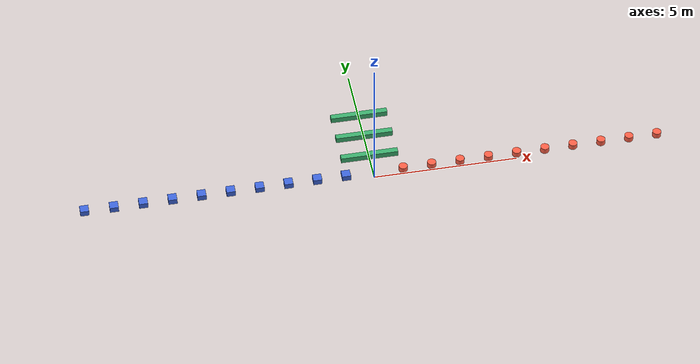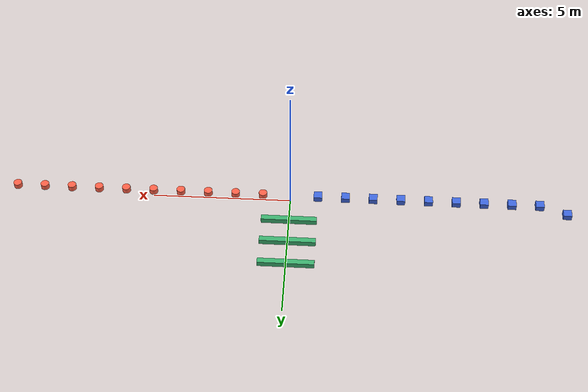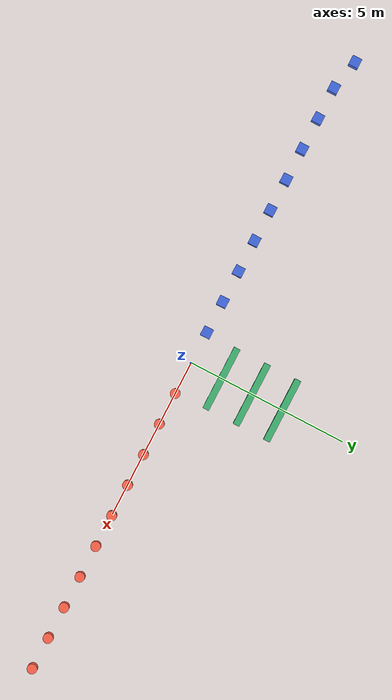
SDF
<sdf version="1.4">
 <world name="default">
  <physics type="ode">
   <max_step_size>0.001</max_step_size>
   <real_time_factor>1</real_time_factor>
   <real_time_update_rate>1000</real_time_update_rate>
   <gravity>0 0 -9.8</gravity>
  </physics>
  <spherical_coordinates>
   <surface_model>EARTH_WGS84</surface_model>
   <latitude_deg>0</latitude_deg>
   <longitude_deg>0</longitude_deg>
   <elevation>0</elevation>
   <heading_deg>0</heading_deg>
  </spherical_coordinates>
  <scene><sky><clouds><speed>12</speed></clouds></sky></scene>
  <include><uri>model://sun</uri></include>
  <model name="small_cylinder_1">
   <pose>1 0 0.2 0 0 0</pose>
   <include><uri>model://small_cylinder</uri></include>
   <plugin name="mbzirc_gazebo_treasure_plugin_cylinder_1" filename="libmbzirc_gazebo_treasure_plugin.so">
    <staticObject>true</staticObject>
   </plugin>
  </model>
  <model name="small_cylinder_2">
   <pose>2 0 0.2 0 0 0</pose>
   <include><uri>model://small_cylinder</uri></include>
   <plugin name="mbzirc_gazebo_treasure_plugin_cylinder_2" filename="libmbzirc_gazebo_treasure_plugin.so">
    <staticObject>true</staticObject>
   </plugin>
  </model>
  <model name="small_cylinder_3">
   <pose>3 0 0.2 0 0 0</pose>
   <include><uri>model://small_cylinder</uri></include>
   <plugin name="mbzirc_gazebo_treasure_plugin_cylinder_3" filename="libmbzirc_gazebo_treasure_plugin.so">
    <staticObject>true</staticObject>
   </plugin>
  </model>
  <model name="small_cylinder_4">
   <pose>4 0 0.2 0 0 0</pose>
   <include><uri>model://small_cylinder</uri></include>
   <plugin name="mbzirc_gazebo_treasure_plugin_cylinder_4" filename="libmbzirc_gazebo_treasure_plugin.so">
    <staticObject>true</staticObject>
   </plugin>
  </model>
  <model name="small_cylinder_5">
   <pose>5 0 0.2 0 0 0</pose>
   <include><uri>model://small_cylinder</uri></include>
   <plugin name="mbzirc_gazebo_treasure_plugin_cylinder_5" filename="libmbzirc_gazebo_treasure_plugin.so">
    <staticObject>true</staticObject>
   </plugin>
  </model>
  <model name="small_cylinder_6">
   <pose>6 0 0.2 0 0 0</pose>
   <include><uri>model://small_cylinder</uri></include>
   <plugin name="mbzirc_gazebo_treasure_plugin_cylinder_6" filename="libmbzirc_gazebo_treasure_plugin.so"/>
  </model>
  <model name="small_cylinder_7">
   <pose>7 0 0.2 0 0 0</pose>
   <include><uri>model://small_cylinder</uri></include>
   <plugin name="mbzirc_gazebo_treasure_plugin_cylinder_7" filename="libmbzirc_gazebo_treasure_plugin.so"/>
  </model>
  <model name="small_cylinder_8">
   <pose>8 0 0.2 0 0 0</pose>
   <include><uri>model://small_cylinder</uri></include>
   <plugin name="mbzirc_gazebo_treasure_plugin_cylinder_8" filename="libmbzirc_gazebo_treasure_plugin.so"/>
  </model>
  <model name="small_cylinder_9">
   <pose>9 0 0.2 0 0 0</pose>
   <include><uri>model://small_cylinder</uri></include>
   <plugin name="mbzirc_gazebo_treasure_plugin_cylinder_9" filename="libmbzirc_gazebo_treasure_plugin.so"/>
  </model>
  <model name="small_cylinder_10">
   <pose>10 0 0.2 0 0 0</pose>
   <include><uri>model://small_cylinder</uri></include>
   <plugin name="mbzirc_gazebo_treasure_plugin_cylinder_10" filename="libmbzirc_gazebo_treasure_plugin.so"/>
  </model>
  <model name="small_rectangle_1">
   <pose>-1 0 0.2 0 0 0</pose>
   <include><uri>model://small_rectangle</uri></include>
   <plugin name="mbzirc_gazebo_treasure_plugin_rectangle_1" filename="libmbzirc_gazebo_treasure_plugin.so">
    <staticObject>true</staticObject>
   </plugin>
  </model>
  <model name="small_rectangle_2">
   <pose>-2 0 0.2 0 0 0</pose>
   <include><uri>model://small_rectangle</uri></include>
   <plugin name="mbzirc_gazebo_treasure_plugin_rectangle_2" filename="libmbzirc_gazebo_treasure_plugin.so">
    <staticObject>true</staticObject>
   </plugin>
  </model>
  <model name="small_rectangle_3">
   <pose>-3 0 0.2 0 0 0</pose>
   <include><uri>model://small_rectangle</uri></include>
   <plugin name="mbzirc_gazebo_treasure_plugin_rectangle_3" filename="libmbzirc_gazebo_treasure_plugin.so">
    <staticObject>true</staticObject>
   </plugin>
  </model>
  <model name="small_rectangle_4">
   <pose>-4 0 0.2 0 0 0</pose>
   <include><uri>model://small_rectangle</uri></include>
   <plugin name="mbzirc_gazebo_treasure_plugin_rectangle_4" filename="libmbzirc_gazebo_treasure_plugin.so">
    <staticObject>true</staticObject>
   </plugin>
  </model>
  <model name="small_rectangle_5">
   <pose>-5 0 0.2 0 0 0</pose>
   <include><uri>model://small_rectangle</uri></include>
   <plugin name="mbzirc_gazebo_treasure_plugin_rectangle_5" filename="libmbzirc_gazebo_treasure_plugin.so">
    <staticObject>true</staticObject>
   </plugin>
  </model>
  <model name="small_rectangle_6">
   <pose>-6 0 0.2 0 0 0</pose>
   <include><uri>model://small_rectangle</uri></include>
   <plugin name="mbzirc_gazebo_treasure_plugin_rectangle_6" filename="libmbzirc_gazebo_treasure_plugin.so"/>
  </model>
  <model name="small_rectangle_7">
   <pose>-7 0 0.2 0 0 0</pose>
   <include><uri>model://small_rectangle</uri></include>
   <plugin name="mbzirc_gazebo_treasure_plugin_rectangle_7" filename="libmbzirc_gazebo_treasure_plugin.so"/>
  </model>
  <model name="small_rectangle_8">
   <pose>-8 0 0.2 0 0 0</pose>
   <include><uri>model://small_rectangle</uri></include>
   <plugin name="mbzirc_gazebo_treasure_plugin_rectangle_8" filename="libmbzirc_gazebo_treasure_plugin.so"/>
  </model>
  <model name="small_rectangle_9">
   <pose>-9 0 0.2 0 0 0</pose>
   <include><uri>model://small_rectangle</uri></include>
   <plugin name="mbzirc_gazebo_treasure_plugin_rectangle_9" filename="libmbzirc_gazebo_treasure_plugin.so"/>
  </model>
  <model name="small_rectangle_10">
   <pose>-10 0.2 0 0 0 0</pose>
   <include><uri>model://small_rectangle</uri></include>
   <plugin name="mbzirc_gazebo_treasure_plugin_rectangle_10" filename="libmbzirc_gazebo_treasure_plugin.so"/>
  </model>
  <model name="large_object_1">
   <pose>0 1 0 0 0 0</pose>
   <include><uri>model://large_object</uri></include>
   <plugin name="mbzirc_gazebo_treasure_plugin_large_1" filename="libmbzirc_gazebo_treasure_plugin.so">
    <staticObject>true</staticObject>
   </plugin>
  </model>
  <model name="large_object_2">
   <pose>0 2 0 0 0 0</pose>
   <include><uri>model://large_object</uri></include>
   <plugin name="mbzirc_gazebo_treasure_plugin_large_2" filename="libmbzirc_gazebo_treasure_plugin.so">
    <staticObject>true</staticObject>
   </plugin>
  </model>
  <model name="large_object_3">
   <pose>0 3 0 0 0 0</pose>
   <include><uri>model://large_object</uri></include>
   <plugin name="mbzirc_gazebo_treasure_plugin_large_3" filename="libmbzirc_gazebo_treasure_plugin.so">
    <staticObject>true</staticObject>
   </plugin>
  </model>
 </world>
</sdf>

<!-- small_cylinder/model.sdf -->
<sdf version='1.4'>
  <model name="small_cylinder">
    <link name="link" >
      <pose>0 0 0.1 0 0 0</pose>
      <inertial>
        <mass>0.5</mass>
        <inertia>
          <!-- http://answers.gazebosim.org/question/4372/the-inertia-matrix-explained/ -->
          <ixx>0.044612</ixx>    <!-- for a box: ixx = 0.083 * mass * (3*r*r + h*h) -->
          <ixy>0.0</ixy>         <!-- for a box: ixy = 0 -->
          <ixz>0.0</ixz>         <!-- for a box: ixz = 0 -->
          <iyy>0.044612</iyy>    <!-- for a box: iyy = 0.083 * mass * (3*r*r + h*h) -->
          <iyz>0.0</iyz>         <!-- for a box: iyz = 0 -->
          <izz>0.025937</izz>    <!-- for a box: izz = 0.083 * mass * (r*r + h*h) -->
        </inertia>
      </inertial>
      <collision name="collision">
        <geometry>
          <cylinder>
            <length>0.2</length>
            <radius>0.15</radius>
          </cylinder>
        </geometry>
      </collision>
      <visual name="visual">
        <geometry>
          <cylinder>
            <length>0.2</length>
            <radius>0.15</radius>
          </cylinder>
        </geometry>
        <material>
          <ambient>1.00 0.39 0.28 1</ambient> <!-- tomato -->
          <diffuse>1.00 0.38 0.28 1</diffuse>
          <specular>0.1 0.1 0.1 1</specular>
          <emissive>0 0 0 0</emissive>
        </material>
      </visual>
    </link>
  </model>
</sdf>

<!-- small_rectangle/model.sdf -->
<sdf version='1.4'>
  <model name="small_rectangle">
    <link name="link" >
      <pose>0 0 0.1 0 0 0</pose>
      <inertial>
        <mass>0.5</mass>
        <inertia>
          <!-- http://answers.gazebosim.org/question/4372/the-inertia-matrix-explained/ -->
          <ixx>0.005395</ixx>   <!-- for a box: ixx = 0.083 * mass * (y*y + z*z) -->
          <ixy>0.0</ixy>        <!-- for a box: ixy = 0 -->
          <ixz>0.0</ixz>        <!-- for a box: ixz = 0 -->
          <iyy>0.005395</iyy>   <!-- for a box: iyy = 0.083 * mass * (x*x + z*z) -->
          <iyz>0.0</iyz>        <!-- for a box: iyz = 0 -->
          <izz>0.007470</izz>   <!-- for a box: izz = 0.083 * mass * (x*x + y*y) -->
        </inertia>
      </inertial>
      <collision name="collision">
        <geometry>
          <box>
            <size>0.3 0.3 0.2</size>
          </box>
        </geometry>
      </collision>
      <visual name="visual">
        <geometry>
          <box>
            <size>0.3 0.3 0.2</size>
          </box>
        </geometry>
        <material>
          <ambient>0.25 0.41 0.88 1</ambient> <!-- Royal Blue -->
          <diffuse>0.25 0.41 0.88 1</diffuse>
          <specular>0.1 0.1 0.1 1</specular>
          <emissive>0 0 0 0</emissive>
        </material>
      </visual>
    </link>
  </model>
</sdf>

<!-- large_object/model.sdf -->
<sdf version='1.4'>
  <model name="large_object">
    <link name="link" >
      <pose>0 0 0.1 0 0 0</pose>
      <inertial>
        <mass>2.0</mass>
        <inertia>
          <!-- http://answers.gazebosim.org/question/4372/the-inertia-matrix-explained/ -->
          <ixx>0.01328</ixx>    <!-- for a box: ixx = 0.083 * mass * (y*y + z*z) -->
          <ixy>0.0</ixy>        <!-- for a box: ixy = 0 -->
          <ixz>0.0</ixz>        <!-- for a box: ixz = 0 -->
          <iyy>0.67064</iyy>    <!-- for a box: iyy = 0.083 * mass * (x*x + z*z) -->
          <iyz>0.0</iyz>        <!-- for a box: iyz = 0 -->
          <izz>0.67064</izz>    <!-- for a box: izz = 0.083 * mass * (x*x + y*y) -->
        </inertia>
      </inertial>
      <collision name="collision">
        <geometry>
          <box>
            <size>2.0 0.2 0.2</size>
          </box>
        </geometry>
      </collision>
      <visual name="visual">
        <geometry>
          <box>
            <size>2.0 0.2 0.2</size>
          </box>
        </geometry>
        <material>
          <ambient>0.24 0.70 0.44 1</ambient> <!-- MediamSeaGreen -->
          <diffuse>0.24 0.70 0.44 1</diffuse>
          <specular>0.1 0.1 0.1 1</specular>
          <emissive>0 0 0 0</emissive>
        </material>
      </visual>
    </link>
  </model>
</sdf>
